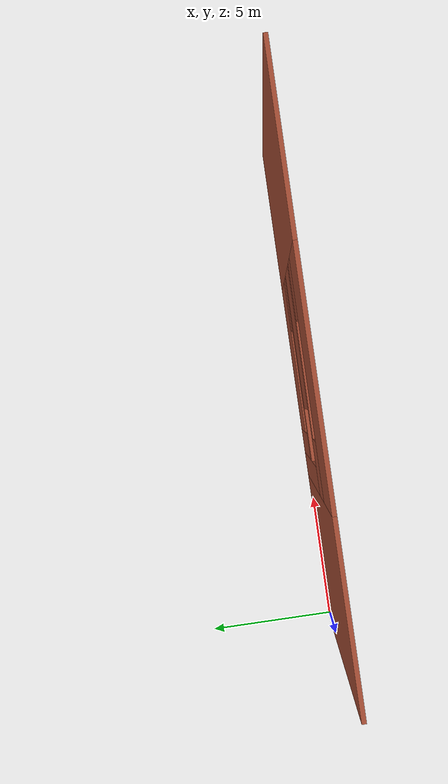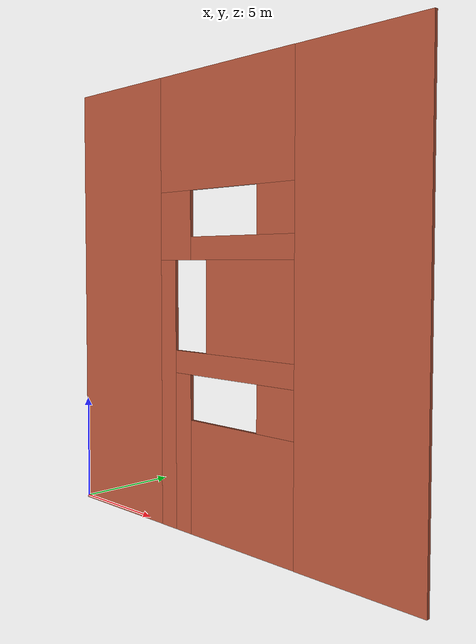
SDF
<?xml version='1.0'?>
<sdf version='1.6'>
    <model name='s_wall'>

        <static>1</static>
        <allow_auto_disable>1</allow_auto_disable>

        <include>
            <uri>model://s_wall_1</uri>
            <name>e_wall_1_1</name>
            <pose>0 0 10 0 1.57 0</pose>
        </include>

        <include>
            <uri>model://s_wall_2</uri>
            <name>e_wall_2</name>
            <pose>6 0 10 0 1.57 0</pose>
        </include>

        <include>
            <uri>model://s_wall_1</uri>
            <name>e_wall_1_2</name>
            <pose>14 0 10 0 1.57 0</pose>
        </include>

    </model>
</sdf>

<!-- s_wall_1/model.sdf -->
<sdf version='1.7'>
  <model name='s_wall_1'>
    <pose>10 0 0 0 -0 0</pose>
    <link name='Wall_6'>
      <collision name='Wall_6_Collision'>
        <geometry>
          <box>
            <size>20.15 0.15 6</size>
          </box>
        </geometry>
        <pose>0 0 3 0 -0 0</pose>
      </collision>
      <visual name='Wall_6_Visual'>
        <pose>0 0 3 0 -0 0</pose>
        <geometry>
          <box>
            <size>20.15 0.15 6</size>
          </box>
        </geometry>
        <material>
          <script>
            <uri>model://s_wall_1/scripts</uri>
            <name>Bricks4_7</name>
          </script>
          <ambient>1 1 1 1</ambient>
        </material>
        <meta>
          <layer>0</layer>
        </meta>
      </visual>
      <pose>-0 0 0 0 -0 0</pose>
    </link>
    <static>1</static>
  </model>
</sdf>

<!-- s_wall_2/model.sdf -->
<sdf version='1.7'>
  <model name='s_wall_2'>
    <pose>10 0 0 0 -0 0</pose>
    <link name='Wall_0'>
      <pose>-0 0 0 0 -0 0</pose>
      <visual name='Wall_0_Visual_0'>
        <pose>-7.5375 0 4 0 -0 0</pose>
        <geometry>
          <box>
            <size>5.075 0.15 8</size>
          </box>
        </geometry>
        <material>
          <script>
            <uri>model://s_wall_2/scripts</uri>
            <name>Bricks4_17</name>
          </script>
          <ambient>1 1 1 1</ambient>
        </material>
        <meta>
          <layer>0</layer>
        </meta>
      </visual>
      <collision name='Wall_0_Collision_0'>
        <geometry>
          <box>
            <size>5.075 0.15 8</size>
          </box>
        </geometry>
        <pose>-7.5375 0 4 0 -0 0</pose>
      </collision>
      <visual name='Wall_0_Visual_1'>
        <pose>-3.5 0 1 0 -0 0</pose>
        <geometry>
          <box>
            <size>3 0.15 2</size>
          </box>
        </geometry>
        <material>
          <script>
            <uri>model://s_wall_2/scripts</uri>
            <name>Bricks4_18</name>
          </script>
          <ambient>1 1 1 1</ambient>
        </material>
        <meta>
          <layer>0</layer>
        </meta>
      </visual>
      <collision name='Wall_0_Collision_1'>
        <geometry>
          <box>
            <size>3 0.15 2</size>
          </box>
        </geometry>
        <pose>-3.5 0 1 0 -0 0</pose>
      </collision>
      <visual name='Wall_0_Visual_2'>
        <pose>4.0375 0 0.5 0 -0 0</pose>
        <geometry>
          <box>
            <size>12.075 0.15 1</size>
          </box>
        </geometry>
        <material>
          <script>
            <uri>model://s_wall_2/scripts</uri>
            <name>Bricks4_19</name>
          </script>
          <ambient>1 1 1 1</ambient>
        </material>
        <meta>
          <layer>0</layer>
        </meta>
      </visual>
      <collision name='Wall_0_Collision_2'>
        <geometry>
          <box>
            <size>12.075 0.15 1</size>
          </box>
        </geometry>
        <pose>4.0375 0 0.5 0 -0 0</pose>
      </collision>
      <visual name='Wall_0_Visual_3'>
        <pose>2.5 0 4.5 0 -0 0</pose>
        <geometry>
          <box>
            <size>1 0.15 7</size>
          </box>
        </geometry>
        <material>
          <script>
            <uri>model://s_wall_2/scripts</uri>
            <name>Bricks4_20</name>
          </script>
          <ambient>1 1 1 1</ambient>
        </material>
        <meta>
          <layer>0</layer>
        </meta>
      </visual>
      <collision name='Wall_0_Collision_3'>
        <geometry>
          <box>
            <size>1 0.15 7</size>
          </box>
        </geometry>
        <pose>2.5 0 4.5 0 -0 0</pose>
      </collision>
      <visual name='Wall_0_Visual_4'>
        <pose>6.5375 0 1.5 0 -0 0</pose>
        <geometry>
          <box>
            <size>7.075 0.15 1</size>
          </box>
        </geometry>
        <material>
          <script>
            <uri>model://s_wall_2/scripts</uri>
            <name>Bricks4_21</name>
          </script>
          <ambient>1 1 1 1</ambient>
        </material>
        <meta>
          <layer>0</layer>
        </meta>
      </visual>
      <collision name='Wall_0_Collision_4'>
        <geometry>
          <box>
            <size>7.075 0.15 1</size>
          </box>
        </geometry>
        <pose>6.5375 0 1.5 0 -0 0</pose>
      </collision>
      <visual name='Wall_0_Visual_5'>
        <pose>-2.5 0 5 0 -0 0</pose>
        <geometry>
          <box>
            <size>1 0.15 6</size>
          </box>
        </geometry>
        <material>
          <script>
            <uri>model://s_wall_2/scripts</uri>
            <name>Bricks4_21</name>
          </script>
          <ambient>1 1 1 1</ambient>
        </material>
        <meta>
          <layer>0</layer>
        </meta>
      </visual>
      <collision name='Wall_0_Collision_5'>
        <geometry>
          <box>
            <size>1 0.15 6</size>
          </box>
        </geometry>
        <pose>-2.5 0 5 0 -0 0</pose>
      </collision>
      <visual name='Wall_0_Visual_6'>
        <pose>-2.5 0 5 0 -0 0</pose>
        <geometry>
          <box>
            <size>1 0.15 6</size>
          </box>
        </geometry>
        <material>
          <script>
            <uri>model://s_wall_2/scripts</uri>
            <name>Bricks4_22</name>
          </script>
          <ambient>1 1 1 1</ambient>
        </material>
        <meta>
          <layer>0</layer>
        </meta>
      </visual>
      <collision name='Wall_0_Collision_6'>
        <geometry>
          <box>
            <size>1 0.15 6</size>
          </box>
        </geometry>
        <pose>-2.5 0 5 0 -0 0</pose>
      </collision>
      <visual name='Wall_0_Visual_7'>
        <pose>7.5375 0 5 0 -0 0</pose>
        <geometry>
          <box>
            <size>5.075 0.15 6</size>
          </box>
        </geometry>
        <material>
          <script>
            <uri>model://s_wall_2/scripts</uri>
            <name>Bricks4_23</name>
          </script>
          <ambient>1 1 1 1</ambient>
        </material>
        <meta>
          <layer>0</layer>
        </meta>
      </visual>
      <collision name='Wall_0_Collision_7'>
        <geometry>
          <box>
            <size>5.075 0.15 6</size>
          </box>
        </geometry>
        <pose>7.5375 0 5 0 -0 0</pose>
      </collision>
      <visual name='Wall_0_Visual_8'>
        <pose>0 0 5.5 0 -0 0</pose>
        <geometry>
          <box>
            <size>4 0.15 5</size>
          </box>
        </geometry>
        <material>
          <script>
            <uri>model://s_wall_2/scripts</uri>
            <name>Bricks4_23</name>
          </script>
          <ambient>1 1 1 1</ambient>
        </material>
        <meta>
          <layer>0</layer>
        </meta>
      </visual>
      <collision name='Wall_0_Collision_8'>
        <geometry>
          <box>
            <size>4 0.15 5</size>
          </box>
        </geometry>
        <pose>0 0 5.5 0 -0 0</pose>
      </collision>
      <visual name='Wall_0_Visual_9'>
        <pose>0 0 5.5 0 -0 0</pose>
        <geometry>
          <box>
            <size>4 0.15 5</size>
          </box>
        </geometry>
        <material>
          <script>
            <uri>model://s_wall_2/scripts</uri>
            <name>Bricks4_24</name>
          </script>
          <ambient>1 1 1 1</ambient>
        </material>
        <meta>
          <layer>0</layer>
        </meta>
      </visual>
      <collision name='Wall_0_Collision_9'>
        <geometry>
          <box>
            <size>4 0.15 5</size>
          </box>
        </geometry>
        <pose>0 0 5.5 0 -0 0</pose>
      </collision>
      <visual name='Wall_0_Visual_10'>
        <pose>-4 0 7 0 -0 0</pose>
        <geometry>
          <box>
            <size>2 0.15 2</size>
          </box>
        </geometry>
        <material>
          <script>
            <uri>model://s_wall_2/scripts</uri>
            <name>Bricks4_25</name>
          </script>
          <ambient>1 1 1 1</ambient>
        </material>
        <meta>
          <layer>0</layer>
        </meta>
      </visual>
      <collision name='Wall_0_Collision_10'>
        <geometry>
          <box>
            <size>2 0.15 2</size>
          </box>
        </geometry>
        <pose>-4 0 7 0 -0 0</pose>
      </collision>
      <visual name='Wall_0_Visual_11'>
        <pose>4 0 7 0 -0 0</pose>
        <geometry>
          <box>
            <size>2 0.15 2</size>
          </box>
        </geometry>
        <material>
          <script>
            <uri>model://s_wall_2/scripts</uri>
            <name>Bricks4_25</name>
          </script>
          <ambient>1 1 1 1</ambient>
        </material>
        <meta>
          <layer>0</layer>
        </meta>
      </visual>
      <collision name='Wall_0_Collision_11'>
        <geometry>
          <box>
            <size>2 0.15 2</size>
          </box>
        </geometry>
        <pose>4 0 7 0 -0 0</pose>
      </collision>
    </link>
    <static>1</static>
  </model>
</sdf>
